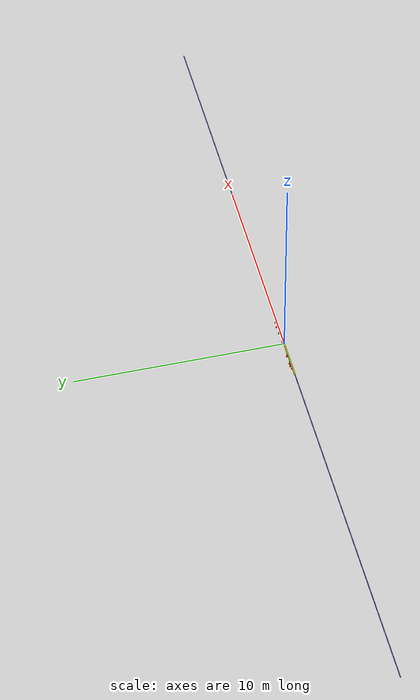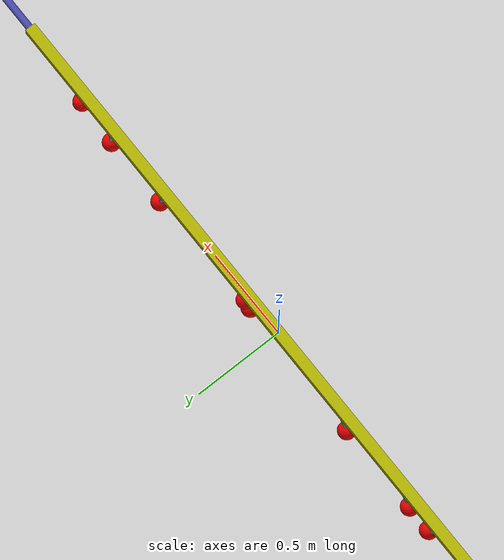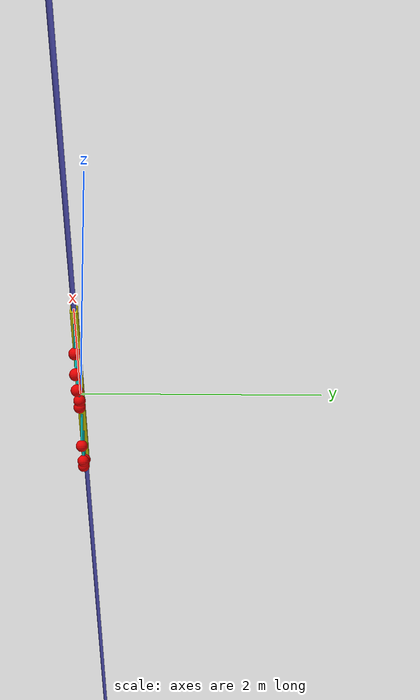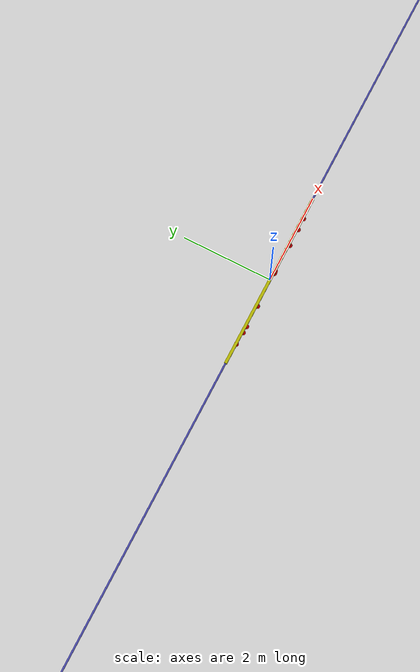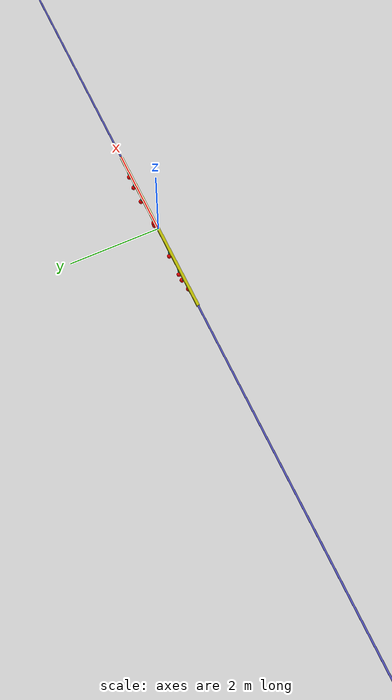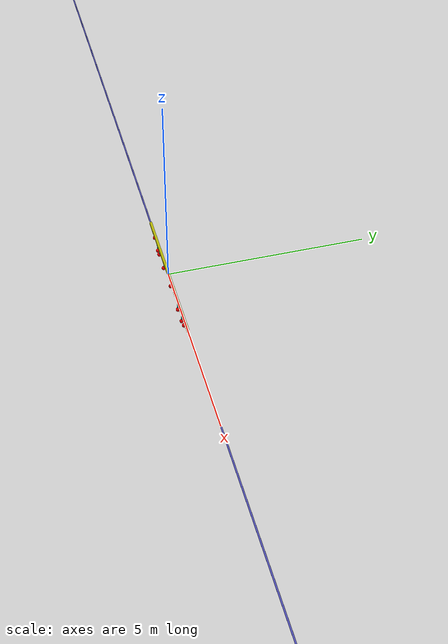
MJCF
<mujoco model="pendulum v1">
	<compiler inertiafromgeom="true"/>
	<default>
		<joint armature="0" damping="0" limited="true" />
		<geom contype="0" rgba="0.7 0.7 0 1" friction="0 0 0" condim="1"/>
		<tendon/>
		<motor ctrlrange="-3 3"/>
	</default>
	<option gravity="0 0 -9.81" integrator="RK4" timestep="0.02"/>
	<size nstack="3000"/>
	<worldbody>
		<geom name="rail" pos="0 0 0" quat="0.707 0 0.707 0" rgba="0.3 0.3 0.7 1" size="0.02 20" type="capsule"/>
		<body name="cart" pos="0 0 0" >
			<joint axis="1 0 0" damping="1" limited="true" name="slider" pos="0 0 0" range="-1 1" type="slide" frictionloss="0"/>
			<geom name="cart" pos="0 0 0" quat="0.707 0 0.707 0" size="0.03 0.03 2" type="box" density="100"/>

			<body name="pole1" pos="-1.8 0 0" euler="0 -70 0">
				<joint axis="0 -1 0" name="hinge1" pos="0 0.5 0" range="-180 180" type="hinge"/>
				<geom pos="0 0 -0.15" name="cpole1" rgba="0 0.7 0.7 1" size="0.01 0.15" type="capsule" />
				<body name="toe1" pos="0 0 -0.15"/>
					<geom pos="0 0 -0.3" name="ball1" size="0.05" rgba="0.9 0 0 1" type="sphere" density="1000"/> <!--sphereのサイズは半径指定-->
			</body>

			<body name="pole2" pos="-1.35 0 0" euler="0 -30 0">
				<joint axis="0 -1 0" name="hinge2" pos="0 0.5 0" range="-180 180" type="hinge"/>
				<geom pos="0 0 -0.15" name="cpole2" rgba="0 0.7 0.7 1" size="0.01 0.15" type="capsule" />
				<body name="toe2" pos="0 0 -0.15"/>
					<geom pos="0 0 -.3" name="ball2" size="0.05 0.05" rgba="0.9 0 0 1" type="sphere" density="1000"/>
			</body>

			<body name="pole3" pos="-.9 0 0" euler="0 30 0">
				<joint axis="0 -1 0" name="hinge3" pos="0 0.5 0" range="-180 180" type="hinge"/>
				<geom pos="0 0 -0.15" name="cpole3" rgba="0 0.7 0.7 1" size="0.01 0.15" type="capsule" />
				<body name="toe3" pos="0 0 -0.15"/>
					<geom pos="0 0 -.3" name="ball3" size="0.05 0.05" rgba="0.9 0 0 1" type="sphere" density="1000"/>
			</body>

			<body name="pole4" pos="-.45 0 0" euler="0 20 0">
				<joint axis="0 -1 0" name="hinge4" pos="0 0.5 0" range="-180 180" type="hinge"/>
				<geom pos="0 0 -0.15" name="cpole4" rgba="0 0.7 0.7 1" size="0.01 0.15" type="capsule" />
				<body name="toe4" pos="0 0 -0.15"/>
					<geom pos="0 0 -0.3" name="ball4" size="0.05" rgba="0.9 0 0 1" type="sphere" density="1000"/> <!--sphereのサイズは半径指定-->
			</body>

			<body name="pole5" pos="0 0 0" euler="0 -60 0">
				<joint axis="0 -1 0" name="hinge5" pos="0 0.5 0" range="-180 180" type="hinge"/>
				<geom pos="0 0 -0.15" name="cpole5" rgba="0 0.7 0.7 1" size="0.01 0.15" type="capsule" />
				<body name="toe5" pos="0 0 -0.15"/>
					<geom pos="0 0 -.3" name="ball5" size="0.05 0.05" rgba="0.9 0 0 1" type="sphere" density="1000"/>
			</body>

			<body name="pole6" pos="0.45 0 0" euler="0 50 0">
				<joint axis="0 -1 0" name="hinge6" pos="0 0.5 0" range="-180 180" type="hinge"/>
				<geom pos="0 0 -0.15" name="cpole6" rgba="0 0.7 0.7 1" size="0.01 0.15" type="capsule" />
				<body name="toe6" pos="0 0 -0.15"/>
					<geom pos="0 0 -.3" name="ball6" size="0.05 0.05" rgba="0.9 0 0 1" type="sphere" density="1000"/>
			</body>

			<body name="pole7" pos=".9 0 0" euler="0 -10 0">
				<joint axis="0 -1 0" name="hinge7" pos="0 0.5 0" range="-180 180" type="hinge"/>
				<geom pos="0 0 -0.15" name="cpole7" rgba="0 0.7 0.7 1" size="0.01 0.15" type="capsule" />
				<body name="toe7" pos="0 0 -0.15"/>
					<geom pos="0 0 -0.3" name="ball7" size="0.05" rgba="0.9 0 0 1" type="sphere" density="1000"/> <!--sphereのサイズは半径指定-->
			</body>

			<body name="pole8" pos="1.35 0 0" euler="0 0 0">
				<joint axis="0 -1 0" name="hinge8" pos="0 0.5 0" range="-180 180" type="hinge"/>
				<geom pos="0 0 -0.15" name="cpole8" rgba="0 0.7 0.7 1" size="0.01 0.15" type="capsule" />
				<body name="toe8" pos="0 0 -0.15"/>
					<geom pos="0 0 -.3" name="ball8" size="0.05 0.05" rgba="0.9 0 0 1" type="sphere" density="1000"/>
			</body>

			<body name="pole9" pos="1.8 0 0" euler="0 45 0">
				<joint axis="0 -1 0" name="hinge9" pos="0 0.5 0" range="-180 180" type="hinge"/>
				<geom pos="0 0 -0.15" name="cpole9" rgba="0 0.7 0.7 1" size="0.01 0.15" type="capsule" />
				<body name="toe9" pos="0 0 -0.15"/>
					<geom pos="0 0 -.3" name="ball9" size="0.05 0.05" rgba="0.9 0 0 1" type="sphere" density="1000"/>
			</body>

		</body>
	</worldbody>
	<actuator>
		<motor gear="1000" joint="slider" name="slide"/>
	</actuator>
</mujoco>
